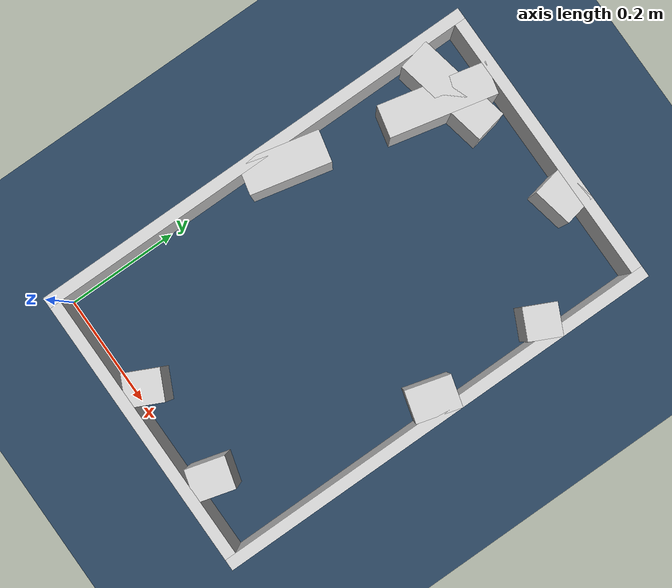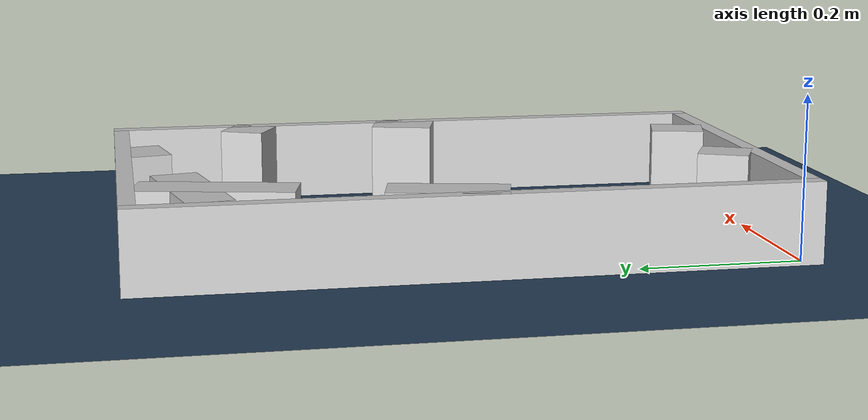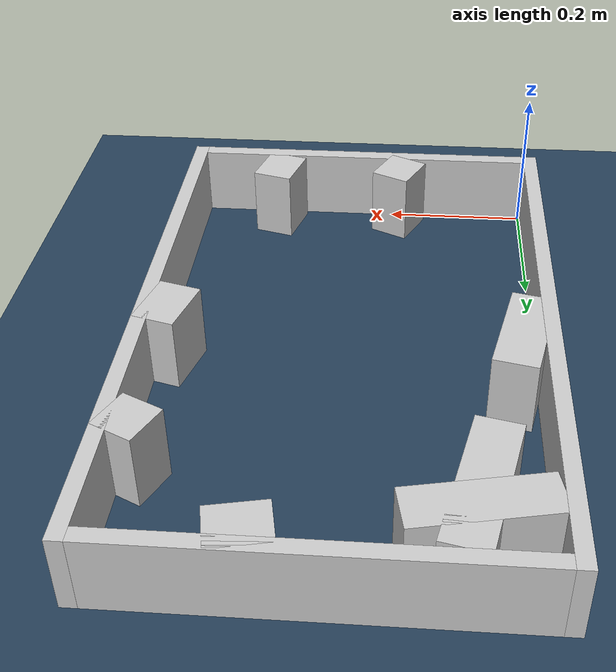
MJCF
<?xml version="1.0" ?>
<mujoco model="generated_real_template">
  <compiler angle="degree"/>
  <option timestep="0.002" integrator="implicitfast" iterations="100" cone="elliptic"/>
  <default>
    <geom density="1"/>
  </default>
  <asset>
    <texture builtin="gradient" height="3072" rgb1="0.3 0.5 0.7" rgb2="0 0 0" type="skybox" width="512"/>
    <texture builtin="checker" height="300" mark="edge" markrgb="0.8 0.8 0.8" name="groundplane" rgb1="0.2 0.3 0.4" rgb2="0.1 0.2 0.3" type="2d" width="300"/>
    <material name="groundplane" reflectance="0.2" texrepeat="5 5" texture="groundplane" texuniform="true"/>
  </asset>
  <worldbody>
    <light dir="0 0 -1" directional="true" pos="0 0 1.5"/>
    <geom name="floor" type="plane" condim="4" friction="0.5 0.005 0.001" material="groundplane" size="0 0 0.05"/>
    <body name="walls">
      <geom name="wall_boundary_left" type="box" condim="4" friction="1.0 0.005 0.0001" rgba="0.8 0.8 0.8 1" pos="-0.010000 0.387500 0.050000" euler="0 0 0.000000" size="0.010000 0.407500 0.050000"/>
      <geom name="wall_boundary_right" type="box" condim="4" friction="1.0 0.005 0.0001" rgba="0.8 0.8 0.8 1" pos="0.500000 0.387500 0.050000" euler="0 0 0.000000" size="0.010000 0.407500 0.050000"/>
      <geom name="wall_boundary_bottom" type="box" condim="4" friction="1.0 0.005 0.0001" rgba="0.8 0.8 0.8 1" pos="0.245000 -0.010000 0.050000" euler="0 0 0.000000" size="0.245000 0.010000 0.050000"/>
      <geom name="wall_boundary_top" type="box" condim="4" friction="1.0 0.005 0.0001" rgba="0.8 0.8 0.8 1" pos="0.245000 0.785000 0.050000" euler="0 0 0.000000" size="0.245000 0.010000 0.050000"/>
      <geom name="wall_inner_1_1" type="box" condim="4" friction="1.0 0.005 0.0001" rgba="0.8 0.8 0.8 1" pos="0.023578 0.422126 0.050000" euler="0 0 77.226473" size="0.071380 0.028500 0.050000"/>
      <geom name="wall_inner_1_2" type="box" condim="4" friction="1.0 0.005 0.0001" rgba="0.8 0.8 0.8 1" pos="0.082622 0.682565 0.050000" euler="0 0 77.226473" size="0.094781 0.028500 0.050000"/>
      <geom name="wall_inner_2_1" type="box" condim="4" friction="1.0 0.005 0.0001" rgba="0.8 0.8 0.8 1" pos="0.471595 0.613432 0.050000" euler="0 0 -115.758769" size="0.029307 0.028500 0.050000"/>
      <geom name="wall_inner_2_2" type="box" condim="4" friction="1.0 0.005 0.0001" rgba="0.8 0.8 0.8 1" pos="0.189571 0.028965 0.050000" euler="0 0 -115.758769" size="0.032160 0.028500 0.050000"/>
      <geom name="wall_inner_3_1" type="box" condim="4" friction="1.0 0.005 0.0001" rgba="0.8 0.8 0.8 1" pos="0.325870 0.759908 0.050000" euler="0 0 -168.482726" size="0.035887 0.028500 0.050000"/>
      <geom name="wall_inner_3_2" type="box" condim="4" friction="1.0 0.005 0.0001" rgba="0.8 0.8 0.8 1" pos="0.084181 0.710660 0.050000" euler="0 0 -168.482726" size="0.085911 0.028500 0.050000"/>
      <geom name="wall_inner_4_1" type="box" condim="4" friction="1.0 0.005 0.0001" rgba="0.8 0.8 0.8 1" pos="0.371027 0.033451 0.050000" euler="0 0 74.574274" size="0.034701 0.028500 0.050000"/>
      <geom name="wall_inner_4_2" type="box" condim="4" friction="1.0 0.005 0.0001" rgba="0.8 0.8 0.8 1" pos="0.471867 0.398907 0.050000" euler="0 0 74.574274" size="0.040073 0.028500 0.050000"/>
    </body>
  </worldbody>
</mujoco>
